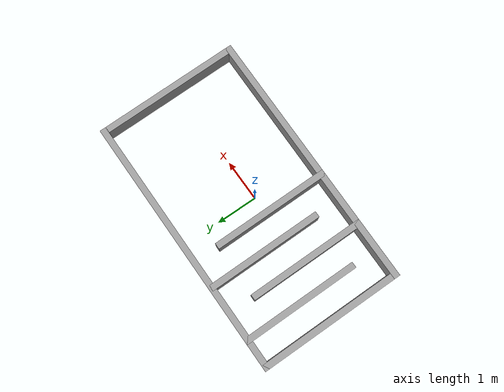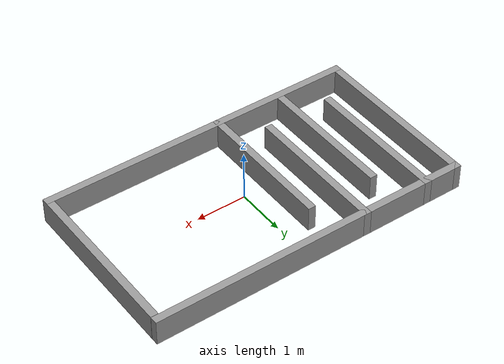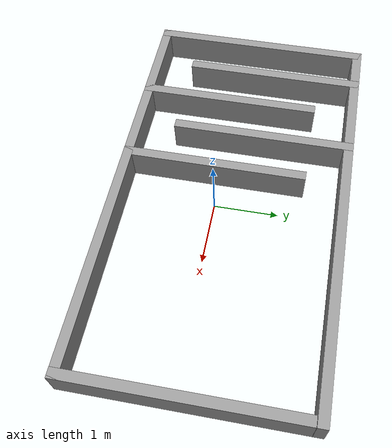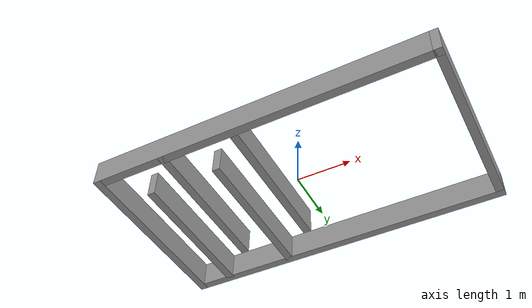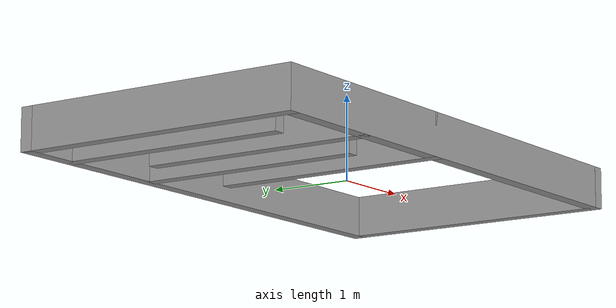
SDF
<?xml version='1.0'?>
<sdf version='1.7'>
  <model name='zigzag'>
    <pose>-0.05 0.239879 0 0 -0 0</pose>
    <link name='Wall_1'>
      <collision name='Wall_1_Collision'>
        <geometry>
          <box>
            <size>3.57 0.15 0.5</size>
          </box>
        </geometry>
        <pose>0 0 0.25 0 -0 0</pose>
      </collision>
      <visual name='Wall_1_Visual'>
        <pose>0 0 0.25 0 -0 0</pose>
        <geometry>
          <box>
            <size>3.57 0.15 0.5</size>
          </box>
        </geometry>
        <material>
          <script>
            <uri>file://media/materials/scripts/gazebo.material</uri>
            <name>Gazebo/Grey</name>
          </script>
          <ambient>1 1 1 1</ambient>
        </material>
        <meta>
          <layer>0</layer>
        </meta>
      </visual>
      <pose>-3.15 0.000121 0 0 -0 -1.5708</pose>
    </link>
    <link name='Wall_11'>
      <collision name='Wall_11_Collision'>
        <geometry>
          <box>
            <size>2.89 0.15 0.5</size>
          </box>
        </geometry>
        <pose>0 0 0.25 0 -0 0</pose>
      </collision>
      <visual name='Wall_11_Visual'>
        <pose>0 0 0.25 0 -0 0</pose>
        <geometry>
          <box>
            <size>2.89 0.15 0.5</size>
          </box>
        </geometry>
        <material>
          <script>
            <uri>file://media/materials/scripts/gazebo.material</uri>
            <name>Gazebo/Grey</name>
          </script>
          <ambient>1 1 1 1</ambient>
        </material>
        <meta>
          <layer>0</layer>
        </meta>
      </visual>
      <pose>-1.79 -0.339879 0 0 -0 1.5708</pose>
    </link>
    <link name='Wall_15'>
      <collision name='Wall_15_Collision'>
        <geometry>
          <box>
            <size>2.89 0.15 0.5</size>
          </box>
        </geometry>
        <pose>0 0 0.25 0 -0 0</pose>
      </collision>
      <visual name='Wall_15_Visual'>
        <pose>0 0 0.25 0 -0 0</pose>
        <geometry>
          <box>
            <size>2.89 0.15 0.5</size>
          </box>
        </geometry>
        <material>
          <script>
            <uri>file://media/materials/scripts/gazebo.material</uri>
            <name>Gazebo/Grey</name>
          </script>
          <ambient>1 1 1 1</ambient>
        </material>
        <meta>
          <layer>0</layer>
        </meta>
      </visual>
      <pose>-1.11 0.340121 0 0 -0 -1.5708</pose>
    </link>
    <link name='Wall_17'>
      <collision name='Wall_17_Collision'>
        <geometry>
          <box>
            <size>2.89 0.15 0.5</size>
          </box>
        </geometry>
        <pose>0 0 0.25 0 -0 0</pose>
      </collision>
      <visual name='Wall_17_Visual'>
        <pose>0 0 0.25 0 -0 0</pose>
        <geometry>
          <box>
            <size>2.89 0.15 0.5</size>
          </box>
        </geometry>
        <material>
          <script>
            <uri>file://media/materials/scripts/gazebo.material</uri>
            <name>Gazebo/Grey</name>
          </script>
          <ambient>1 1 1 1</ambient>
        </material>
        <meta>
          <layer>0</layer>
        </meta>
      </visual>
      <pose>-0.43 -0.339879 0 0 -0 1.5708</pose>
    </link>
    <link name='Wall_2'>
      <collision name='Wall_2_Collision'>
        <geometry>
          <box>
            <size>6.45 0.15 0.5</size>
          </box>
        </geometry>
        <pose>0 0 0.25 0 -0 0</pose>
      </collision>
      <visual name='Wall_2_Visual'>
        <pose>0 0 0.25 0 -0 0</pose>
        <geometry>
          <box>
            <size>6.45 0.15 0.5</size>
          </box>
        </geometry>
        <material>
          <script>
            <uri>file://media/materials/scripts/gazebo.material</uri>
            <name>Gazebo/Grey</name>
          </script>
          <ambient>1 1 1 1</ambient>
        </material>
        <meta>
          <layer>0</layer>
        </meta>
      </visual>
      <pose>0 -1.70988 0 0 -0 0</pose>
    </link>
    <link name='Wall_3'>
      <collision name='Wall_3_Collision'>
        <geometry>
          <box>
            <size>3.41548 0.15 0.5</size>
          </box>
        </geometry>
        <pose>0 0 0.25 0 -0 0</pose>
      </collision>
      <visual name='Wall_3_Visual'>
        <pose>0 0 0.25 0 -0 0</pose>
        <geometry>
          <box>
            <size>3.41548 0.15 0.5</size>
          </box>
        </geometry>
        <material>
          <script>
            <uri>file://media/materials/scripts/gazebo.material</uri>
            <name>Gazebo/Grey</name>
          </script>
          <ambient>1 1 1 1</ambient>
        </material>
        <meta>
          <layer>0</layer>
        </meta>
      </visual>
      <pose>3.15 -0.077379 0 0 -0 1.5708</pose>
    </link>
    <link name='Wall_5'>
      <collision name='Wall_5_Collision'>
        <geometry>
          <box>
            <size>6.45 0.15 0.5</size>
          </box>
        </geometry>
        <pose>0 0 0.25 0 -0 0</pose>
      </collision>
      <visual name='Wall_5_Visual'>
        <pose>0 0 0.25 0 -0 0</pose>
        <geometry>
          <box>
            <size>6.45 0.15 0.5</size>
          </box>
        </geometry>
        <material>
          <script>
            <uri>file://media/materials/scripts/gazebo.material</uri>
            <name>Gazebo/Grey</name>
          </script>
          <ambient>1 1 1 1</ambient>
        </material>
        <meta>
          <layer>0</layer>
        </meta>
      </visual>
      <pose>0 1.71012 0 0 -0 0</pose>
    </link>
    <link name='Wall_7'>
      <collision name='Wall_7_Collision'>
        <geometry>
          <box>
            <size>2.89 0.15 0.5</size>
          </box>
        </geometry>
        <pose>0 0 0.25 0 -0 0</pose>
      </collision>
      <visual name='Wall_7_Visual'>
        <pose>0 0 0.25 0 -0 0</pose>
        <geometry>
          <box>
            <size>2.89 0.15 0.5</size>
          </box>
        </geometry>
        <material>
          <script>
            <uri>file://media/materials/scripts/gazebo.material</uri>
            <name>Gazebo/Grey</name>
          </script>
          <ambient>1 1 1 1</ambient>
        </material>
        <meta>
          <layer>0</layer>
        </meta>
      </visual>
      <pose>-2.47 0.340121 0 0 -0 -1.5708</pose>
    </link>
    <static>1</static>
  </model>
</sdf>
